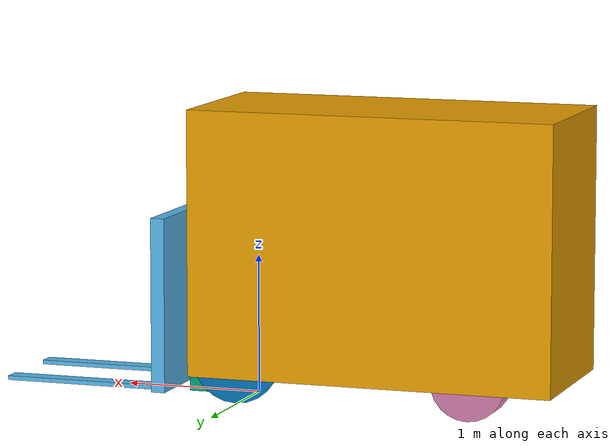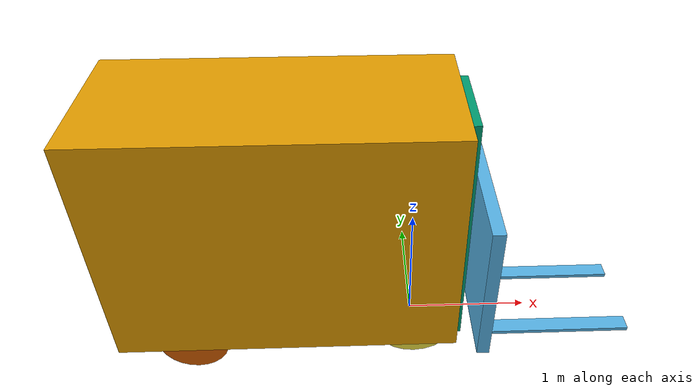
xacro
<?xml version="1.0"?>
<!-- Forklift -->
<robot name="forklift" xmlns:xacro="http://www.ros.org/wiki/xacro">

  <!-- Constants for robot dimensions -->
  <xacro:property name="PI" value="3.1415926535897931"/>
  <xacro:property name="body_mass" value="1" />
  <xacro:property name="lift1_mass" value="10" />
  <xacro:property name="lift2_mass" value="10" />
  <xacro:property name="wheelF_mass" value="10" />
  <xacro:property name="wheelB_mass" value="5" />

  <xacro:property name="wheelF_radius" value="0.33" />
  <xacro:property name="wheelF_width" value="0.01" />
  <xacro:property name="wheelB_radius" value="0.27" />
  <xacro:property name="wheelB_width" value="0.2" />

  <!-- Body dimensions -->
  <xacro:property name="length" value="2.65" />
  <xacro:property name="width" value="1.2" />
  <xacro:property name="height" value="1.9" />

  <!-- Import all Gazebo-customization elements, including Gazebo colors -->
  <xacro:include filename="$(find forklift_description)/urdf/forklift.gazebo" />

  <xacro:macro name="cylinder_inertia" params="m r h">
            <inertia  ixx="${m*(3*r*r+h*h)/12}" ixy = "0" ixz = "0"
                      iyy="${m*(3*r*r+h*h)/12}" iyz = "0"
                      izz="${m*r*r/2}" />
  </xacro:macro>

  <xacro:macro name="cube_inertia" params="m w h d">
          <inertia
            ixx="${m / 12.0 * (h*h + d*d)}" ixy="0.0" ixz="0.0"
            iyy="${m / 12.0 * (d*d + w*w)}" iyz="0.0"
            izz="${m / 12.0 * (h*h + w*w)}"/>
  </xacro:macro>

  <!-- Forklift -->
  <link name="base_link">
    <collision>
      <origin xyz="-1 0 ${height/2 + 0.2}" rpy="0 0 0"/>
      <geometry>
	     <box size="${length} ${width} ${height}"/>
      </geometry>
    </collision>

    <visual>
      <origin xyz="-1 0 ${height/2 + 0.2}" rpy="0 0 0"/>
      <geometry>
             <box size="${length} ${width} ${height}"/>
      </geometry>
    </visual>

    <inertial>
      <origin xyz="0 0 1" rpy="0 0 0"/>
      <mass value="${body_mass}"/>
      <cube_inertia m="${lift1_mass}" w="1" h="1" d="1" />
    </inertial>
  </link>

  <!-- Import lift unit -->
  <xacro:include filename="$(find forklift_description)/urdf/forklift_lift.xacro" />

  <!-- Import front wheels -->
  <xacro:include filename="$(find forklift_description)/urdf/forklift_front_wheels.xacro" />

  <!-- Import back wheels -->
  <xacro:include filename="$(find forklift_description)/urdf/forklift_back_wheels.xacro" />

</robot>

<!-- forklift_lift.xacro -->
<robot name="forklift" xmlns:xacro="http://www.ros.org/wiki/xacro">

  <joint name="lift1_joint" type="prismatic">
    <parent link="base_link"/>
    <child link="forklift_lift1"/>
    <axis xyz="0 0 1"/>
    <limit lower="0" upper="3" effort="1000" velocity="0.5"/>
  </joint>
  <link name="forklift_lift1">
    <collision>
      <origin xyz="0.55 0 0.695" rpy="0 0 0"/>
      <geometry>
       <box size="0.1 1.2 1.25"/>
      </geometry>
    </collision>
    <collision>
      <origin xyz="1.2 0.32 0.06" rpy="0 0 0"/>
      <geometry>
       <box size="1.2 0.13 0.03"/>
      </geometry>
    </collision>
    <collision>
      <origin xyz="1.2 -0.32 0.06" rpy="0 0 0"/>
      <geometry>
       <box size="1.2 0.13 0.03"/>
      </geometry>
    </collision>

    <visual>
      <origin xyz="0.55 0 0.695" rpy="0 0 0"/>
      <geometry>
       <box size="0.1 1.2 1.25"/>
      </geometry>
    </visual>
    <visual>
      <origin xyz="1.2 0.32 0.06" rpy="0 0 0"/>
      <geometry>
       <box size="1.2 0.13 0.03"/>
      </geometry>
    </visual>
    <visual>
      <origin xyz="1.2 -0.32 0.06" rpy="0 0 0"/>
      <geometry>
       <box size="1.2 0.13 0.03"/>
      </geometry>
    </visual>

    <inertial>
      <origin xyz="0.6 0 0.6" rpy="0 0 0"/>
      <mass value="${lift1_mass}"/>
      <cube_inertia m="${lift1_mass}" w="0.3" h="1" d="1" />
    </inertial>
  </link>

  <joint name="lift2_joint" type="fixed">
    <parent link="base_link"/>
    <child link="forklift_lift2"/>
    <axis xyz="0 0 1"/>
    <limit lower="0" upper="3" effort="1" velocity="1"/>
    <mimic joint="lift1_joint" multiplier="0.5"/>
  </joint>

  <link name="forklift_lift2">
    <collision>
      <origin xyz="0.25 0 1.05" rpy="0 0 0"/>
      <geometry>
       <box size="0.3 0.7 2"/>
      </geometry>
    </collision>

    <visual>
      <origin xyz="0.25 0 1.05" rpy="0 0 0"/>
      <geometry>
       <box size="0.3 0.7 2"/>
      </geometry>
    </visual>

    <inertial>
      <origin xyz="0 -1.2 0.695" rpy="0 0 0"/>
      <mass value="${lift2_mass}"/>
      <cube_inertia m="${lift2_mass}" w="0.7" h="2" d="0.4" />
    </inertial>
  </link>

  <transmission name="lift_transmission">
    <type>transmission_interface/SimpleTransmission</type>
    <joint name="lift1_joint">
      <hardwareInterface>VelocityJointInterface</hardwareInterface>
    </joint>
    <actuator name="lift_motor">
      <hardwareInterface>VelocityJointInterface</hardwareInterface>
      <mechanicalReduction>1</mechanicalReduction>
    </actuator>
  </transmission>

</robot>

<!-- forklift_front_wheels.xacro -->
<robot name="forklift" xmlns:xacro="http://www.ros.org/wiki/xacro">

  <!-- FR Wheel -->
  <joint name="wheelFR_joint" type="continuous">
    <parent link="base_link"/>
    <child link="forklift_wheelFR"/>
    <axis xyz="0 1 0"/>
    <origin xyz="0 -0.49389 0.34047"/>
  </joint>

  <link name="forklift_wheelFR">
    <collision>
      <origin xyz="0 0 0" rpy="${PI/2} 0 0"/>
      <geometry>
       <cylinder radius="${wheelF_radius}" length="${wheelF_width}" />
      </geometry>
    </collision>

    <visual>
      <origin xyz="0 0 0" rpy="${PI/2} 0 0"/>
      <geometry>
       <cylinder radius="${wheelF_radius}" length="${wheelF_width}" />
      </geometry>
    </visual>

    <inertial>
      <origin xyz="0 0 0" rpy="${PI/2} 0 0"/>
      <mass value="${wheelF_mass}"/>
      <cylinder_inertia  m="${wheelF_mass}" r="${wheelF_radius}" h="${wheelF_width}" />
    </inertial>
  </link>

  <!-- FL Wheel -->
  <joint name="wheelFL_joint" type="continuous">
    <parent link="base_link"/>
    <child link="forklift_wheelFL"/>
    <axis xyz="0 1 0"/>
    <origin xyz="0 0.49389 0.34047"/>
  </joint>

  <link name="forklift_wheelFL">
    <collision>
      <origin xyz="0 0 0" rpy="${PI/2} 0 0"/>
      <geometry>
       <cylinder radius="${wheelF_radius}" length="${wheelF_width}" />
      </geometry>
    </collision>

    <visual>
      <origin xyz="0 0 0" rpy="${PI/2} 0 0"/>
      <geometry>
       <cylinder radius="${wheelF_radius}" length="${wheelF_width}" />
      </geometry>
    </visual>

    <inertial>
      <origin xyz="0 0 0" rpy="${PI/2} 0 0"/>
      <mass value="${wheelF_mass}"/>
      <cylinder_inertia  m="${wheelF_mass}" r="${wheelF_radius}" h="${wheelF_width}" />
    </inertial>
  </link>

  <transmission name="front_right_wheel_transmission">
    <type>hardware_interface</type>
    <joint name="wheelFR_joint">
      <hardwareInterface>VelocityJointInterface</hardwareInterface>
    </joint>
    <actuator name="front_wheel_motor">
      <hardwareInterface>VelocityJointInterface</hardwareInterface>
      <mechanicalReduction>1</mechanicalReduction>
    </actuator>
  </transmission>

  <transmission name="front_left_wheel_transmission">
    <type>hardware_interface</type>
    <joint name="wheelFL_joint">
      <hardwareInterface>VelocityJointInterface</hardwareInterface>
    </joint>
    <actuator name="front_wheel_motor">
      <hardwareInterface>VelocityJointInterface</hardwareInterface>
      <mechanicalReduction>1</mechanicalReduction>
    </actuator>
  </transmission>

</robot>

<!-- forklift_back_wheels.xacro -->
<robot name="forklift" xmlns:xacro="http://www.ros.org/wiki/xacro">

  <!-- BR Wheel -->
  <joint name="wheelBR_joint" type="fixed">
    <parent link="base_link"/>
    <child link="forklift_wheelBR"/>
    <axis xyz="0 1 0"/>
    <origin xyz="-1.730949 -0.49259 0.27997" />
  </joint>

  <link name="forklift_wheelBR">
    <visual>
      <origin xyz="0 0 0" rpy="${PI/2} 0 0"/>
      <geometry>
       <cylinder radius="${wheelB_radius}" length="${wheelB_width}" />
      </geometry>
    </visual>

    <inertial>
      <origin xyz="0 0 0" rpy="0 0 0"/>
      <mass value="${wheelF_mass}"/>
      <cylinder_inertia  m="${wheelB_mass}" r="${wheelB_radius}" h="${wheelB_width}" />
    </inertial>
  </link>

  <!-- BL Wheel -->
  <joint name="wheelBL_joint" type="fixed">
    <parent link="base_link"/>
    <child link="forklift_wheelBL"/>
    <axis xyz="0 1 0"/>
    <origin xyz="-1.730949 0.49259 0.27997" />
  </joint>

  <link name="forklift_wheelBL">
    <visual>
      <origin xyz="0 0 0" rpy="${PI/2} 0 0"/>
      <geometry>
       <cylinder radius="${wheelB_radius}" length="${wheelB_width}" />
      </geometry>
    </visual>

    <inertial>
      <origin xyz="0 0 0" rpy="0 0 0"/>
      <mass value="${wheelF_mass}"/>
      <cylinder_inertia  m="${wheelB_mass}" r="${wheelB_radius}" h="${wheelB_width}" />
    </inertial>
  </link>

  <!-- caster Wheel -->
  <joint name="caster_wheel_joint" type="continuous">
    <parent link="base_link"/>
    <child link="caster_wheel"/>
    <origin xyz="-1.76717 0 0.27997" rpy="0 ${PI/2} 0" />
    <axis xyz="0 0 1" />
  </joint>

  <link name="caster_wheel">
    <collision>
      <origin xyz="0 0 0" rpy="0 0 0"/>
      <geometry>
       <sphere radius="${wheelB_radius}" />
      </geometry>
    </collision>

    <inertial>
      <origin xyz="0 0 0" rpy="0 ${PI/2} 0"/>
      <mass value="${wheelF_mass}"/>
      <cylinder_inertia  m="${wheelB_mass}" r="${wheelB_radius}" h="${wheelB_width}" />
    </inertial>
  </link>

</robot>
